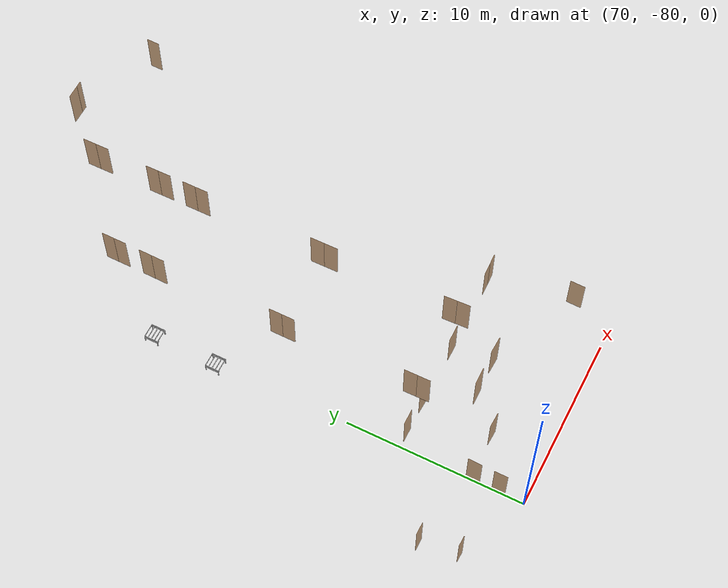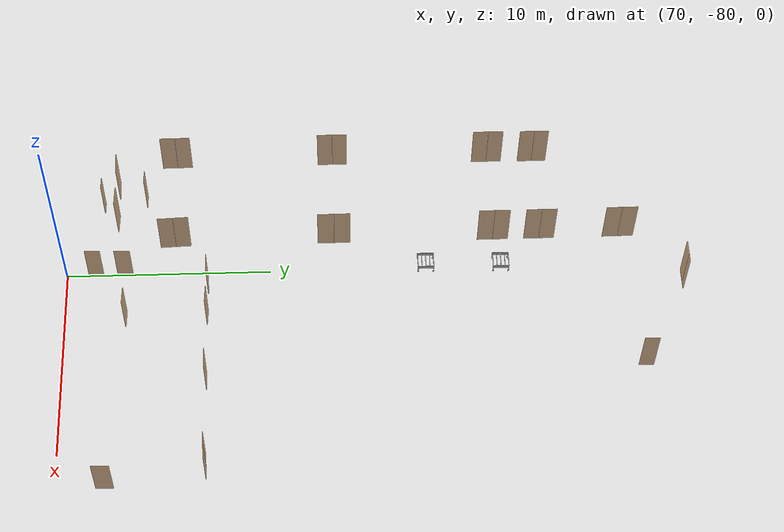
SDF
<sdf version="1.7">
 <world name="estce">
  <include>
   <name>OpenRobotics/MiRCart</name>
   <uri>model://MiRCart</uri>
   <pose>69.80679362706269 -62.352217355699814 0.0 0 0 1.5708</pose>
   <static>True</static>
  </include>
  <include>
   <name>OpenRobotics/MiRCart_2</name>
   <uri>model://MiRCart</uri>
   <pose>69.86865174262017 -58.657115191611055 0.0 0 0 1.5708</pose>
   <static>True</static>
  </include>
  <model name="cancan3">
   <pose>65.9874141096206 -78.28000876506593 0.0 0 0 3.1268591754535766</pose>
   <link name="right">
    <pose>0 0 1.11 0 0 0</pose>
    <visual name="right_visual">
     <geometry><box><size>0.5658636979061031 0.03 2.2</size></box></geometry>
     <material><ambient>0.5 0.25 0 0.6</ambient><diffuse>0.5 0.25 0 0.6</diffuse></material>
    </visual>
    <collision name="right_collision">
     <geometry><box><size>0.5658636979061031 0.03 2.2</size></box></geometry>
     <surface><contact><collide_bitmask>0x02</collide_bitmask></contact></surface>
    </collision>
    <inertial>
     <mass>50.0</mass>
     <inertia><ixx>20.17041666666667</ixx><iyy>21.500840519199876</iyy><izz>1.3379238525332064</izz></inertia>
    </inertial>
   </link>
   <joint name="right_joint" type="revolute">
    <parent>world</parent>
    <child>right</child>
    <axis><xyz>0 0 -1</xyz><limit><lower>0</lower><upper>1.57</upper></limit></axis>
    <pose>0.2879318489530516 0 0 0 0 0</pose>
   </joint>
   <plugin name="door" filename="libdoor.so">
    <v_max_door>0.5</v_max_door>
    <a_max_door>0.3</a_max_door>
    <a_nom_door>0.15</a_nom_door>
    <dx_min_door>0.01</dx_min_door>
    <f_max_door>500.0</f_max_door>
    <door name="cancan3" type="SwingDoor" left_joint_name="empty_joint" right_joint_name="right_joint"/>
   </plugin>
  </model>
  <model name="cancan2">
   <pose>65.64942774056314 -76.17066049148946 0.0 0 0 0.0</pose>
   <link name="right">
    <pose>0 0 1.11 0 0 0</pose>
    <visual name="right_visual">
     <geometry><box><size>0.6658829585567838 0.03 2.2</size></box></geometry>
     <material><ambient>0.5 0.25 0 0.6</ambient><diffuse>0.5 0.25 0 0.6</diffuse></material>
    </visual>
    <collision name="right_collision">
     <geometry><box><size>0.6658829585567838 0.03 2.2</size></box></geometry>
     <surface><contact><collide_bitmask>0x02</collide_bitmask></contact></surface>
    </collision>
    <inertial>
     <mass>50.0</mass>
     <inertia><ixx>20.17041666666667</ixx><iyy>22.014167143734735</iyy><izz>1.8512504770680647</izz></inertia>
    </inertial>
   </link>
   <joint name="right_joint" type="revolute">
    <parent>world</parent>
    <child>right</child>
    <axis><xyz>0 0 1</xyz><limit><lower>0</lower><upper>1.57</upper></limit></axis>
    <pose>0.3379414792783919 0 0 0 0 0</pose>
   </joint>
   <plugin name="door" filename="libdoor.so">
    <v_max_door>0.5</v_max_door>
    <a_max_door>0.3</a_max_door>
    <a_nom_door>0.15</a_nom_door>
    <dx_min_door>0.01</dx_min_door>
    <f_max_door>500.0</f_max_door>
    <door name="cancan2" type="SwingDoor" left_joint_name="empty_joint" right_joint_name="right_joint"/>
   </plugin>
  </model>
  <model name="can7">
   <pose>70.06035354413558 -77.11813783586021 0.0 0 0 1.549233235089427</pose>
   <link name="right">
    <pose>0 0 1.11 0 0 0</pose>
    <visual name="right_visual">
     <geometry><box><size>0.7728128371704641 0.03 2.2</size></box></geometry>
     <material><ambient>0.5 0.25 0 0.6</ambient><diffuse>0.5 0.25 0 0.6</diffuse></material>
    </visual>
    <collision name="right_collision">
     <geometry><box><size>0.7728128371704641 0.03 2.2</size></box></geometry>
     <surface><contact><collide_bitmask>0x02</collide_bitmask></contact></surface>
    </collision>
    <inertial>
     <mass>50.0</mass>
     <inertia><ixx>20.17041666666667</ixx><iyy>22.655165338731095</iyy><izz>2.4922486720644264</izz></inertia>
    </inertial>
   </link>
   <joint name="right_joint" type="revolute">
    <parent>world</parent>
    <child>right</child>
    <axis><xyz>0 0 -1</xyz><limit><lower>0</lower><upper>1.57</upper></limit></axis>
    <pose>0.39140641858523206 0 0 0 0 0</pose>
   </joint>
   <plugin name="door" filename="libdoor.so">
    <v_max_door>0.5</v_max_door>
    <a_max_door>0.3</a_max_door>
    <a_nom_door>0.15</a_nom_door>
    <dx_min_door>0.01</dx_min_door>
    <f_max_door>500.0</f_max_door>
    <door name="can7" type="SwingDoor" left_joint_name="empty_joint" right_joint_name="right_joint"/>
   </plugin>
  </model>
  <model name="can8">
   <pose>70.04037759244974 -78.55145725909793 0.0 0 0 1.5402560482815513</pose>
   <link name="right">
    <pose>0 0 1.11 0 0 0</pose>
    <visual name="right_visual">
     <geometry><box><size>0.7456228934420266 0.03 2.2</size></box></geometry>
     <material><ambient>0.5 0.25 0 0.6</ambient><diffuse>0.5 0.25 0 0.6</diffuse></material>
    </visual>
    <collision name="right_collision">
     <geometry><box><size>0.7456228934420266 0.03 2.2</size></box></geometry>
     <surface><contact><collide_bitmask>0x02</collide_bitmask></contact></surface>
    </collision>
    <inertial>
     <mass>50.0</mass>
     <inertia><ixx>20.17041666666667</ixx><iyy>22.483139580103586</iyy><izz>2.3202229134369157</izz></inertia>
    </inertial>
   </link>
   <joint name="right_joint" type="revolute">
    <parent>world</parent>
    <child>right</child>
    <axis><xyz>0 0 -1</xyz><limit><lower>0</lower><upper>1.57</upper></limit></axis>
    <pose>0.3778114467210133 0 0 0 0 0</pose>
   </joint>
   <plugin name="door" filename="libdoor.so">
    <v_max_door>0.5</v_max_door>
    <a_max_door>0.3</a_max_door>
    <a_nom_door>0.15</a_nom_door>
    <dx_min_door>0.01</dx_min_door>
    <f_max_door>500.0</f_max_door>
    <door name="can8" type="SwingDoor" left_joint_name="empty_joint" right_joint_name="right_joint"/>
   </plugin>
  </model>
  <model name="can6">
   <pose>72.58942125200996 -77.0033771156696 0.0 0 0 3.103509085440403</pose>
   <link name="right">
    <pose>0 0 1.11 0 0 0</pose>
    <visual name="right_visual">
     <geometry><box><size>0.845366502185707 0.03 2.2</size></box></geometry>
     <material><ambient>0.5 0.25 0 0.6</ambient><diffuse>0.5 0.25 0 0.6</diffuse></material>
    </visual>
    <collision name="right_collision">
     <geometry><box><size>0.845366502185707 0.03 2.2</size></box></geometry>
     <surface><contact><collide_bitmask>0x02</collide_bitmask></contact></surface>
    </collision>
    <inertial>
     <mass>50.0</mass>
     <inertia><ixx>20.17041666666667</ixx><iyy>23.144352179240407</iyy><izz>2.981435512573737</izz></inertia>
    </inertial>
   </link>
   <joint name="right_joint" type="revolute">
    <parent>world</parent>
    <child>right</child>
    <axis><xyz>0 0 1</xyz><limit><lower>0</lower><upper>1.57</upper></limit></axis>
    <pose>0.4276832510928535 0 0 0 0 0</pose>
   </joint>
   <plugin name="door" filename="libdoor.so">
    <v_max_door>0.5</v_max_door>
    <a_max_door>0.3</a_max_door>
    <a_nom_door>0.15</a_nom_door>
    <dx_min_door>0.01</dx_min_door>
    <f_max_door>500.0</f_max_door>
    <door name="can6" type="SwingDoor" left_joint_name="empty_joint" right_joint_name="right_joint"/>
   </plugin>
  </model>
  <model name="can2">
   <pose>72.59327055056514 -73.06088737912995 0.0 0 0 3.0966947153122124</pose>
   <link name="right">
    <pose>0 0 1.11 0 0 0</pose>
    <visual name="right_visual">
     <geometry><box><size>0.8106265710402226 0.03 2.2</size></box></geometry>
     <material><ambient>0.5 0.25 0 0.6</ambient><diffuse>0.5 0.25 0 0.6</diffuse></material>
    </visual>
    <collision name="right_collision">
     <geometry><box><size>0.8106265710402226 0.03 2.2</size></box></geometry>
     <surface><contact><collide_bitmask>0x02</collide_bitmask></contact></surface>
    </collision>
    <inertial>
     <mass>50.0</mass>
     <inertia><ixx>20.17041666666667</ixx><iyy>22.904647656985127</iyy><izz>2.741730990318455</izz></inertia>
    </inertial>
   </link>
   <joint name="right_joint" type="revolute">
    <parent>world</parent>
    <child>right</child>
    <axis><xyz>0 0 -1</xyz><limit><lower>0</lower><upper>1.57</upper></limit></axis>
    <pose>0.4103132855201113 0 0 0 0 0</pose>
   </joint>
   <plugin name="door" filename="libdoor.so">
    <v_max_door>0.5</v_max_door>
    <a_max_door>0.3</a_max_door>
    <a_nom_door>0.15</a_nom_door>
    <dx_min_door>0.01</dx_min_door>
    <f_max_door>500.0</f_max_door>
    <door name="can2" type="SwingDoor" left_joint_name="empty_joint" right_joint_name="right_joint"/>
   </plugin>
  </model>
  <model name="can1">
   <pose>70.7878485261773 -73.05168497442074 0.0 0 0 0.021507412331041125</pose>
   <link name="right">
    <pose>0 0 1.11 0 0 0</pose>
    <visual name="right_visual">
     <geometry><box><size>0.8468522677860504 0.03 2.2</size></box></geometry>
     <material><ambient>0.5 0.25 0 0.6</ambient><diffuse>0.5 0.25 0 0.6</diffuse></material>
    </visual>
    <collision name="right_collision">
     <geometry><box><size>0.8468522677860504 0.03 2.2</size></box></geometry>
     <surface><contact><collide_bitmask>0x02</collide_bitmask></contact></surface>
    </collision>
    <inertial>
     <mass>50.0</mass>
     <inertia><ixx>20.17041666666667</ixx><iyy>23.15482818105991</iyy><izz>2.991911514393235</izz></inertia>
    </inertial>
   </link>
   <joint name="right_joint" type="revolute">
    <parent>world</parent>
    <child>right</child>
    <axis><xyz>0 0 1</xyz><limit><lower>0</lower><upper>1.57</upper></limit></axis>
    <pose>0.4284261338930252 0 0 0 0 0</pose>
   </joint>
   <plugin name="door" filename="libdoor.so">
    <v_max_door>0.5</v_max_door>
    <a_max_door>0.3</a_max_door>
    <a_nom_door>0.15</a_nom_door>
    <dx_min_door>0.01</dx_min_door>
    <f_max_door>500.0</f_max_door>
    <door name="can1" type="SwingDoor" left_joint_name="empty_joint" right_joint_name="right_joint"/>
   </plugin>
  </model>
  <model name="can3">
   <pose>76.12580437975446 -73.07010100628392 0.0 0 0 0.018498442462925417</pose>
   <link name="right">
    <pose>0 0 1.11 0 0 0</pose>
    <visual name="right_visual">
     <geometry><box><size>0.9849950738526125 0.03 2.2</size></box></geometry>
     <material><ambient>0.5 0.25 0 0.6</ambient><diffuse>0.5 0.25 0 0.6</diffuse></material>
    </visual>
    <collision name="right_collision">
     <geometry><box><size>0.9849950738526125 0.03 2.2</size></box></geometry>
     <surface><contact><collide_bitmask>0x02</collide_bitmask></contact></surface>
    </collision>
    <inertial>
     <mass>50.0</mass>
     <inertia><ixx>20.17041666666667</ixx><iyy>24.209230397974643</iyy><izz>4.046313731307974</izz></inertia>
    </inertial>
   </link>
   <joint name="right_joint" type="revolute">
    <parent>world</parent>
    <child>right</child>
    <axis><xyz>0 0 -1</xyz><limit><lower>0</lower><upper>1.57</upper></limit></axis>
    <pose>0.49749753692630627 0 0 0 0 0</pose>
   </joint>
   <plugin name="door" filename="libdoor.so">
    <v_max_door>0.5</v_max_door>
    <a_max_door>0.3</a_max_door>
    <a_nom_door>0.15</a_nom_door>
    <dx_min_door>0.01</dx_min_door>
    <f_max_door>500.0</f_max_door>
    <door name="can3" type="SwingDoor" left_joint_name="empty_joint" right_joint_name="right_joint"/>
   </plugin>
  </model>
  <model name="can4">
   <pose>80.71146364835411 -73.03691623710695 0.0 0 0 0.03623150862274341</pose>
   <link name="right">
    <pose>0.33103247992899754 0 1.11 0 0 0</pose>
    <visual name="right_visual">
     <geometry><box><size>0.6520649598579951 0.03 2.2</size></box></geometry>
     <material><ambient>0.5 0.25 0 0.6</ambient><diffuse>0.5 0.25 0 0.6</diffuse></material>
    </visual>
    <collision name="right_collision">
     <geometry><box><size>0.6520649598579951 0.03 2.2</size></box></geometry>
     <surface><contact><collide_bitmask>0x02</collide_bitmask></contact></surface>
    </collision>
    <inertial>
     <mass>50.0</mass>
     <inertia><ixx>20.17041666666667</ixx><iyy>21.93828629947754</iyy><izz>1.77536963281087</izz></inertia>
    </inertial>
   </link>
   <joint name="right_joint" type="revolute">
    <parent>world</parent>
    <child>right</child>
    <axis><xyz>0 0 1</xyz><limit><lower>0</lower><upper>1.57</upper></limit></axis>
    <pose>0.33103247992899754 0 0 0 0 0</pose>
   </joint>
   <link name="left">
    <pose>-0.33103247992899754 0 1.11 0 0 0</pose>
    <visual name="left_visual">
     <geometry><box><size>0.6520649598579951 0.03 2.2</size></box></geometry>
     <material><ambient>0.5 0.25 0 0.6</ambient><diffuse>0.5 0.25 0 0.6</diffuse></material>
    </visual>
    <collision name="left_collision">
     <geometry><box><size>0.6520649598579951 0.03 2.2</size></box></geometry>
     <surface><contact><collide_bitmask>0x02</collide_bitmask></contact></surface>
    </collision>
    <inertial>
     <mass>50.0</mass>
     <inertia><ixx>20.17041666666667</ixx><iyy>21.93828629947754</iyy><izz>1.77536963281087</izz></inertia>
    </inertial>
   </link>
   <joint name="left_joint" type="revolute">
    <parent>world</parent>
    <child>left</child>
    <axis><xyz>0 0 1</xyz><limit><lower>-1.57</lower><upper>0</upper></limit></axis>
    <pose>-0.33103247992899754 0 0 0 0 0</pose>
   </joint>
   <plugin name="door" filename="libdoor.so">
    <v_max_door>0.5</v_max_door>
    <a_max_door>0.3</a_max_door>
    <a_nom_door>0.15</a_nom_door>
    <dx_min_door>0.01</dx_min_door>
    <f_max_door>500.0</f_max_door>
    <door name="can4" type="DoubleSwingDoor" left_joint_name="left_joint" right_joint_name="right_joint"/>
   </plugin>
  </model>
  <model name="can5">
   <pose>81.7004977056983 -77.67335706827876 0.0 0 0 1.5466963287256115</pose>
   <link name="right">
    <pose>0 0 1.11 0 0 0</pose>
    <visual name="right_visual">
     <geometry><box><size>0.8394490678208565 0.03 2.2</size></box></geometry>
     <material><ambient>0.5 0.25 0 0.6</ambient><diffuse>0.5 0.25 0 0.6</diffuse></material>
    </visual>
    <collision name="right_collision">
     <geometry><box><size>0.8394490678208565 0.03 2.2</size></box></geometry>
     <surface><contact><collide_bitmask>0x02</collide_bitmask></contact></surface>
    </collision>
    <inertial>
     <mass>50.0</mass>
     <inertia><ixx>20.17041666666667</ixx><iyy>23.10281140610544</iyy><izz>2.939894739438771</izz></inertia>
    </inertial>
   </link>
   <joint name="right_joint" type="revolute">
    <parent>world</parent>
    <child>right</child>
    <axis><xyz>0 0 1</xyz><limit><lower>0</lower><upper>1.57</upper></limit></axis>
    <pose>0.42472453391042825 0 0 0 0 0</pose>
   </joint>
   <plugin name="door" filename="libdoor.so">
    <v_max_door>0.5</v_max_door>
    <a_max_door>0.3</a_max_door>
    <a_nom_door>0.15</a_nom_door>
    <dx_min_door>0.01</dx_min_door>
    <f_max_door>500.0</f_max_door>
    <door name="can5" type="SwingDoor" left_joint_name="empty_joint" right_joint_name="right_joint"/>
   </plugin>
  </model>
  <model name="TD0120AI">
   <pose>69.458115087851 -57.717003443619944 8.0 0 0 -1.5734051330332963</pose>
   <link name="right">
    <pose>0.3240667100073321 0 1.11 0 0 0</pose>
    <visual name="right_visual">
     <geometry><box><size>0.6381334200146642 0.03 2.2</size></box></geometry>
     <material><ambient>0.5 0.25 0 0.6</ambient><diffuse>0.5 0.25 0 0.6</diffuse></material>
    </visual>
    <collision name="right_collision">
     <geometry><box><size>0.6381334200146642 0.03 2.2</size></box></geometry>
     <surface><contact><collide_bitmask>0x02</collide_bitmask></contact></surface>
    </collision>
    <inertial>
     <mass>50.0</mass>
     <inertia><ixx>20.17041666666667</ixx><iyy>21.863392757248388</iyy><izz>1.7004760905817162</izz></inertia>
    </inertial>
   </link>
   <joint name="right_joint" type="revolute">
    <parent>world</parent>
    <child>right</child>
    <axis><xyz>0 0 -1</xyz><limit><lower>0</lower><upper>1.57</upper></limit></axis>
    <pose>0.3240667100073321 0 0 0 0 0</pose>
   </joint>
   <link name="left">
    <pose>-0.3240667100073321 0 1.11 0 0 0</pose>
    <visual name="left_visual">
     <geometry><box><size>0.6381334200146642 0.03 2.2</size></box></geometry>
     <material><ambient>0.5 0.25 0 0.6</ambient><diffuse>0.5 0.25 0 0.6</diffuse></material>
    </visual>
    <collision name="left_collision">
     <geometry><box><size>0.6381334200146642 0.03 2.2</size></box></geometry>
     <surface><contact><collide_bitmask>0x02</collide_bitmask></contact></surface>
    </collision>
    <inertial>
     <mass>50.0</mass>
     <inertia><ixx>20.17041666666667</ixx><iyy>21.863392757248388</iyy><izz>1.7004760905817162</izz></inertia>
    </inertial>
   </link>
   <joint name="left_joint" type="revolute">
    <parent>world</parent>
    <child>left</child>
    <axis><xyz>0 0 -1</xyz><limit><lower>-1.57</lower><upper>0</upper></limit></axis>
    <pose>-0.3240667100073321 0 0 0 0 0</pose>
   </joint>
   <plugin name="door" filename="libdoor.so">
    <v_max_door>0.5</v_max_door>
    <a_max_door>0.3</a_max_door>
    <a_nom_door>0.15</a_nom_door>
    <dx_min_door>0.01</dx_min_door>
    <f_max_door>500.0</f_max_door>
    <door name="TD0120AI" type="DoubleSwingDoor" left_joint_name="left_joint" right_joint_name="right_joint"/>
   </plugin>
  </model>
  <model name="TD0108AI">
   <pose>69.4391617826742 -59.79881454888431 8.0 0 0 -1.585838878532824</pose>
   <link name="right">
    <pose>0.338806890408198 0 1.11 0 0 0</pose>
    <visual name="right_visual">
     <geometry><box><size>0.667613780816396 0.03 2.2</size></box></geometry>
     <material><ambient>0.5 0.25 0 0.6</ambient><diffuse>0.5 0.25 0 0.6</diffuse></material>
    </visual>
    <collision name="right_collision">
     <geometry><box><size>0.667613780816396 0.03 2.2</size></box></geometry>
     <surface><contact><collide_bitmask>0x02</collide_bitmask></contact></surface>
    </collision>
    <inertial>
     <mass>50.0</mass>
     <inertia><ixx>20.17041666666667</ixx><iyy>22.02378400139985</iyy><izz>1.8608673347331786</izz></inertia>
    </inertial>
   </link>
   <joint name="right_joint" type="revolute">
    <parent>world</parent>
    <child>right</child>
    <axis><xyz>0 0 -1</xyz><limit><lower>0</lower><upper>1.57</upper></limit></axis>
    <pose>0.338806890408198 0 0 0 0 0</pose>
   </joint>
   <link name="left">
    <pose>-0.338806890408198 0 1.11 0 0 0</pose>
    <visual name="left_visual">
     <geometry><box><size>0.667613780816396 0.03 2.2</size></box></geometry>
     <material><ambient>0.5 0.25 0 0.6</ambient><diffuse>0.5 0.25 0 0.6</diffuse></material>
    </visual>
    <collision name="left_collision">
     <geometry><box><size>0.667613780816396 0.03 2.2</size></box></geometry>
     <surface><contact><collide_bitmask>0x02</collide_bitmask></contact></surface>
    </collision>
    <inertial>
     <mass>50.0</mass>
     <inertia><ixx>20.17041666666667</ixx><iyy>22.02378400139985</iyy><izz>1.8608673347331786</izz></inertia>
    </inertial>
   </link>
   <joint name="left_joint" type="revolute">
    <parent>world</parent>
    <child>left</child>
    <axis><xyz>0 0 -1</xyz><limit><lower>-1.57</lower><upper>0</upper></limit></axis>
    <pose>-0.338806890408198 0 0 0 0 0</pose>
   </joint>
   <plugin name="door" filename="libdoor.so">
    <v_max_door>0.5</v_max_door>
    <a_max_door>0.3</a_max_door>
    <a_nom_door>0.15</a_nom_door>
    <dx_min_door>0.01</dx_min_door>
    <f_max_door>500.0</f_max_door>
    <door name="TD0108AI" type="DoubleSwingDoor" left_joint_name="left_joint" right_joint_name="right_joint"/>
   </plugin>
  </model>
  <model name="TD0107AI">
   <pose>69.42261503695126 -66.85896645383062 8.0 0 0 -1.571123505096818</pose>
   <link name="right">
    <pose>0.33253889292192323 0 1.11 0 0 0</pose>
    <visual name="right_visual">
     <geometry><box><size>0.6550777858438465 0.03 2.2</size></box></geometry>
     <material><ambient>0.5 0.25 0 0.6</ambient><diffuse>0.5 0.25 0 0.6</diffuse></material>
    </visual>
    <collision name="right_collision">
     <geometry><box><size>0.6550777858438465 0.03 2.2</size></box></geometry>
     <surface><contact><collide_bitmask>0x02</collide_bitmask></contact></surface>
    </collision>
    <inertial>
     <mass>50.0</mass>
     <inertia><ixx>20.17041666666667</ixx><iyy>21.954695439608656</iyy><izz>1.791778772941985</izz></inertia>
    </inertial>
   </link>
   <joint name="right_joint" type="revolute">
    <parent>world</parent>
    <child>right</child>
    <axis><xyz>0 0 -1</xyz><limit><lower>0</lower><upper>1.57</upper></limit></axis>
    <pose>0.33253889292192323 0 0 0 0 0</pose>
   </joint>
   <link name="left">
    <pose>-0.33253889292192323 0 1.11 0 0 0</pose>
    <visual name="left_visual">
     <geometry><box><size>0.6550777858438465 0.03 2.2</size></box></geometry>
     <material><ambient>0.5 0.25 0 0.6</ambient><diffuse>0.5 0.25 0 0.6</diffuse></material>
    </visual>
    <collision name="left_collision">
     <geometry><box><size>0.6550777858438465 0.03 2.2</size></box></geometry>
     <surface><contact><collide_bitmask>0x02</collide_bitmask></contact></surface>
    </collision>
    <inertial>
     <mass>50.0</mass>
     <inertia><ixx>20.17041666666667</ixx><iyy>21.954695439608656</iyy><izz>1.791778772941985</izz></inertia>
    </inertial>
   </link>
   <joint name="left_joint" type="revolute">
    <parent>world</parent>
    <child>left</child>
    <axis><xyz>0 0 -1</xyz><limit><lower>-1.57</lower><upper>0</upper></limit></axis>
    <pose>-0.33253889292192323 0 0 0 0 0</pose>
   </joint>
   <plugin name="door" filename="libdoor.so">
    <v_max_door>0.5</v_max_door>
    <a_max_door>0.3</a_max_door>
    <a_nom_door>0.15</a_nom_door>
    <dx_min_door>0.01</dx_min_door>
    <f_max_door>500.0</f_max_door>
    <door name="TD0107AI" type="DoubleSwingDoor" left_joint_name="left_joint" right_joint_name="right_joint"/>
   </plugin>
  </model>
  <model name="TD0104AI">
   <pose>73.76116416509116 -66.85944655126693 8.0 0 0 1.5805418816825874</pose>
   <link name="right">
    <pose>0.3619261226570596 0 1.11 0 0 0</pose>
    <visual name="right_visual">
     <geometry><box><size>0.7138522453141192 0.03 2.2</size></box></geometry>
     <material><ambient>0.5 0.25 0 0.6</ambient><diffuse>0.5 0.25 0 0.6</diffuse></material>
    </visual>
    <collision name="right_collision">
     <geometry><box><size>0.7138522453141192 0.03 2.2</size></box></geometry>
     <surface><contact><collide_bitmask>0x02</collide_bitmask></contact></surface>
    </collision>
    <inertial>
     <mass>50.0</mass>
     <inertia><ixx>20.17041666666667</ixx><iyy>22.289937617250047</iyy><izz>2.127020950583373</izz></inertia>
    </inertial>
   </link>
   <joint name="right_joint" type="revolute">
    <parent>world</parent>
    <child>right</child>
    <axis><xyz>0 0 -1</xyz><limit><lower>0</lower><upper>1.57</upper></limit></axis>
    <pose>0.3619261226570596 0 0 0 0 0</pose>
   </joint>
   <link name="left">
    <pose>-0.3619261226570596 0 1.11 0 0 0</pose>
    <visual name="left_visual">
     <geometry><box><size>0.7138522453141192 0.03 2.2</size></box></geometry>
     <material><ambient>0.5 0.25 0 0.6</ambient><diffuse>0.5 0.25 0 0.6</diffuse></material>
    </visual>
    <collision name="left_collision">
     <geometry><box><size>0.7138522453141192 0.03 2.2</size></box></geometry>
     <surface><contact><collide_bitmask>0x02</collide_bitmask></contact></surface>
    </collision>
    <inertial>
     <mass>50.0</mass>
     <inertia><ixx>20.17041666666667</ixx><iyy>22.289937617250047</iyy><izz>2.127020950583373</izz></inertia>
    </inertial>
   </link>
   <joint name="left_joint" type="revolute">
    <parent>world</parent>
    <child>left</child>
    <axis><xyz>0 0 -1</xyz><limit><lower>-1.57</lower><upper>0</upper></limit></axis>
    <pose>-0.3619261226570596 0 0 0 0 0</pose>
   </joint>
   <plugin name="door" filename="libdoor.so">
    <v_max_door>0.5</v_max_door>
    <a_max_door>0.3</a_max_door>
    <a_nom_door>0.15</a_nom_door>
    <dx_min_door>0.01</dx_min_door>
    <f_max_door>500.0</f_max_door>
    <door name="TD0104AI" type="DoubleSwingDoor" left_joint_name="left_joint" right_joint_name="right_joint"/>
   </plugin>
  </model>
  <model name="TD0106AI">
   <pose>69.42705745066247 -73.93064066868044 8.0 0 0 -1.5619125662999749</pose>
   <link name="right">
    <pose>0.3371586841216713 0 1.11 0 0 0</pose>
    <visual name="right_visual">
     <geometry><box><size>0.6643173682433426 0.03 2.2</size></box></geometry>
     <material><ambient>0.5 0.25 0 0.6</ambient><diffuse>0.5 0.25 0 0.6</diffuse></material>
    </visual>
    <collision name="right_collision">
     <geometry><box><size>0.6643173682433426 0.03 2.2</size></box></geometry>
     <surface><contact><collide_bitmask>0x02</collide_bitmask></contact></surface>
    </collision>
    <inertial>
     <mass>50.0</mass>
     <inertia><ixx>20.17041666666667</ixx><iyy>22.005489857290673</iyy><izz>1.842573190624004</izz></inertia>
    </inertial>
   </link>
   <joint name="right_joint" type="revolute">
    <parent>world</parent>
    <child>right</child>
    <axis><xyz>0 0 -1</xyz><limit><lower>0</lower><upper>1.57</upper></limit></axis>
    <pose>0.3371586841216713 0 0 0 0 0</pose>
   </joint>
   <link name="left">
    <pose>-0.3371586841216713 0 1.11 0 0 0</pose>
    <visual name="left_visual">
     <geometry><box><size>0.6643173682433426 0.03 2.2</size></box></geometry>
     <material><ambient>0.5 0.25 0 0.6</ambient><diffuse>0.5 0.25 0 0.6</diffuse></material>
    </visual>
    <collision name="left_collision">
     <geometry><box><size>0.6643173682433426 0.03 2.2</size></box></geometry>
     <surface><contact><collide_bitmask>0x02</collide_bitmask></contact></surface>
    </collision>
    <inertial>
     <mass>50.0</mass>
     <inertia><ixx>20.17041666666667</ixx><iyy>22.005489857290673</iyy><izz>1.842573190624004</izz></inertia>
    </inertial>
   </link>
   <joint name="left_joint" type="revolute">
    <parent>world</parent>
    <child>left</child>
    <axis><xyz>0 0 -1</xyz><limit><lower>-1.57</lower><upper>0</upper></limit></axis>
    <pose>-0.3371586841216713 0 0 0 0 0</pose>
   </joint>
   <plugin name="door" filename="libdoor.so">
    <v_max_door>0.5</v_max_door>
    <a_max_door>0.3</a_max_door>
    <a_nom_door>0.15</a_nom_door>
    <dx_min_door>0.01</dx_min_door>
    <f_max_door>500.0</f_max_door>
    <door name="TD0106AI" type="DoubleSwingDoor" left_joint_name="left_joint" right_joint_name="right_joint"/>
   </plugin>
  </model>
  <model name="TD0105AI">
   <pose>73.78379682080418 -73.91818855977962 8.0 0 0 1.6134941406274728</pose>
   <link name="right">
    <pose>0.3394167036928094 0 1.11 0 0 0</pose>
    <visual name="right_visual">
     <geometry><box><size>0.6688334073856188 0.03 2.2</size></box></geometry>
     <material><ambient>0.5 0.25 0 0.6</ambient><diffuse>0.5 0.25 0 0.6</diffuse></material>
    </visual>
    <collision name="right_collision">
     <geometry><box><size>0.6688334073856188 0.03 2.2</size></box></geometry>
     <surface><contact><collide_bitmask>0x02</collide_bitmask></contact></surface>
    </collision>
    <inertial>
     <mass>50.0</mass>
     <inertia><ixx>20.17041666666667</ixx><iyy>22.03057552847941</iyy><izz>1.8676588618127383</izz></inertia>
    </inertial>
   </link>
   <joint name="right_joint" type="revolute">
    <parent>world</parent>
    <child>right</child>
    <axis><xyz>0 0 -1</xyz><limit><lower>0</lower><upper>1.57</upper></limit></axis>
    <pose>0.3394167036928094 0 0 0 0 0</pose>
   </joint>
   <link name="left">
    <pose>-0.3394167036928094 0 1.11 0 0 0</pose>
    <visual name="left_visual">
     <geometry><box><size>0.6688334073856188 0.03 2.2</size></box></geometry>
     <material><ambient>0.5 0.25 0 0.6</ambient><diffuse>0.5 0.25 0 0.6</diffuse></material>
    </visual>
    <collision name="left_collision">
     <geometry><box><size>0.6688334073856188 0.03 2.2</size></box></geometry>
     <surface><contact><collide_bitmask>0x02</collide_bitmask></contact></surface>
    </collision>
    <inertial>
     <mass>50.0</mass>
     <inertia><ixx>20.17041666666667</ixx><iyy>22.03057552847941</iyy><izz>1.8676588618127383</izz></inertia>
    </inertial>
   </link>
   <joint name="left_joint" type="revolute">
    <parent>world</parent>
    <child>left</child>
    <axis><xyz>0 0 -1</xyz><limit><lower>-1.57</lower><upper>0</upper></limit></axis>
    <pose>-0.3394167036928094 0 0 0 0 0</pose>
   </joint>
   <plugin name="door" filename="libdoor.so">
    <v_max_door>0.5</v_max_door>
    <a_max_door>0.3</a_max_door>
    <a_nom_door>0.15</a_nom_door>
    <dx_min_door>0.01</dx_min_door>
    <f_max_door>500.0</f_max_door>
    <door name="TD0105AI" type="DoubleSwingDoor" left_joint_name="left_joint" right_joint_name="right_joint"/>
   </plugin>
  </model>
  <model name="TD0118CP3">
   <pose>70.69289519193421 -76.50925675459348 8.0 0 0 -3.1202965498709876</pose>
   <link name="right">
    <pose>0 0 1.11 0 0 0</pose>
    <visual name="right_visual">
     <geometry><box><size>0.8786817897678904 0.03 2.2</size></box></geometry>
     <material><ambient>0.5 0.25 0 0.6</ambient><diffuse>0.5 0.25 0 0.6</diffuse></material>
    </visual>
    <collision name="right_collision">
     <geometry><box><size>0.8786817897678904 0.03 2.2</size></box></geometry>
     <surface><contact><collide_bitmask>0x02</collide_bitmask></contact></surface>
    </collision>
    <inertial>
     <mass>50.0</mass>
     <inertia><ixx>20.17041666666667</ixx><iyy>23.38367369862377</iyy><izz>3.2207570319570964</izz></inertia>
    </inertial>
   </link>
   <joint name="right_joint" type="revolute">
    <parent>world</parent>
    <child>right</child>
    <axis><xyz>0 0 -1</xyz><limit><lower>0</lower><upper>1.57</upper></limit></axis>
    <pose>0.4443408948839452 0 0 0 0 0</pose>
   </joint>
   <plugin name="door" filename="libdoor.so">
    <v_max_door>0.5</v_max_door>
    <a_max_door>0.3</a_max_door>
    <a_nom_door>0.15</a_nom_door>
    <dx_min_door>0.01</dx_min_door>
    <f_max_door>500.0</f_max_door>
    <door name="TD0118CP3" type="SwingDoor" left_joint_name="empty_joint" right_joint_name="right_joint"/>
   </plugin>
  </model>
  <model name="TD0118CP4">
   <pose>72.5011613042312 -76.49643048348364 8.0 0 0 -0.035525531201685036</pose>
   <link name="right">
    <pose>0 0 1.11 0 0 0</pose>
    <visual name="right_visual">
     <geometry><box><size>0.8665398344788962 0.03 2.2</size></box></geometry>
     <material><ambient>0.5 0.25 0 0.6</ambient><diffuse>0.5 0.25 0 0.6</diffuse></material>
    </visual>
    <collision name="right_collision">
     <geometry><box><size>0.8665398344788962 0.03 2.2</size></box></geometry>
     <surface><contact><collide_bitmask>0x02</collide_bitmask></contact></surface>
    </collision>
    <inertial>
     <mass>50.0</mass>
     <inertia><ixx>20.17041666666667</ixx><iyy>23.295380353077974</iyy><izz>3.1324636864113033</izz></inertia>
    </inertial>
   </link>
   <joint name="right_joint" type="revolute">
    <parent>world</parent>
    <child>right</child>
    <axis><xyz>0 0 1</xyz><limit><lower>0</lower><upper>1.57</upper></limit></axis>
    <pose>0.4382699172394481 0 0 0 0 0</pose>
   </joint>
   <plugin name="door" filename="libdoor.so">
    <v_max_door>0.5</v_max_door>
    <a_max_door>0.3</a_max_door>
    <a_nom_door>0.15</a_nom_door>
    <dx_min_door>0.01</dx_min_door>
    <f_max_door>500.0</f_max_door>
    <door name="TD0118CP4" type="SwingDoor" left_joint_name="empty_joint" right_joint_name="right_joint"/>
   </plugin>
  </model>
  <model name="TD0103AI">
   <pose>73.76084966579683 -59.77567315356594 8.0 0 0 1.5729614221660908</pose>
   <link name="right">
    <pose>0.34471092342329807 0 1.11 0 0 0</pose>
    <visual name="right_visual">
     <geometry><box><size>0.6794218468465961 0.03 2.2</size></box></geometry>
     <material><ambient>0.5 0.25 0 0.6</ambient><diffuse>0.5 0.25 0 0.6</diffuse></material>
    </visual>
    <collision name="right_collision">
     <geometry><box><size>0.6794218468465961 0.03 2.2</size></box></geometry>
     <surface><contact><collide_bitmask>0x02</collide_bitmask></contact></surface>
    </collision>
    <inertial>
     <mass>50.0</mass>
     <inertia><ixx>20.17041666666667</ixx><iyy>22.09005852488517</iyy><izz>1.927141858218498</izz></inertia>
    </inertial>
   </link>
   <joint name="right_joint" type="revolute">
    <parent>world</parent>
    <child>right</child>
    <axis><xyz>0 0 -1</xyz><limit><lower>0</lower><upper>1.57</upper></limit></axis>
    <pose>0.34471092342329807 0 0 0 0 0</pose>
   </joint>
   <link name="left">
    <pose>-0.34471092342329807 0 1.11 0 0 0</pose>
    <visual name="left_visual">
     <geometry><box><size>0.6794218468465961 0.03 2.2</size></box></geometry>
     <material><ambient>0.5 0.25 0 0.6</ambient><diffuse>0.5 0.25 0 0.6</diffuse></material>
    </visual>
    <collision name="left_collision">
     <geometry><box><size>0.6794218468465961 0.03 2.2</size></box></geometry>
     <surface><contact><collide_bitmask>0x02</collide_bitmask></contact></surface>
    </collision>
    <inertial>
     <mass>50.0</mass>
     <inertia><ixx>20.17041666666667</ixx><iyy>22.09005852488517</iyy><izz>1.927141858218498</izz></inertia>
    </inertial>
   </link>
   <joint name="left_joint" type="revolute">
    <parent>world</parent>
    <child>left</child>
    <axis><xyz>0 0 -1</xyz><limit><lower>-1.57</lower><upper>0</upper></limit></axis>
    <pose>-0.34471092342329807 0 0 0 0 0</pose>
   </joint>
   <plugin name="door" filename="libdoor.so">
    <v_max_door>0.5</v_max_door>
    <a_max_door>0.3</a_max_door>
    <a_nom_door>0.15</a_nom_door>
    <dx_min_door>0.01</dx_min_door>
    <f_max_door>500.0</f_max_door>
    <door name="TD0103AI" type="DoubleSwingDoor" left_joint_name="left_joint" right_joint_name="right_joint"/>
   </plugin>
  </model>
  <model name="TD0102AI">
   <pose>73.75508046016452 -57.70424779287917 8.0 0 0 1.5769013709534752</pose>
   <link name="right">
    <pose>0.33995202967899124 0 1.11 0 0 0</pose>
    <visual name="right_visual">
     <geometry><box><size>0.6699040593579825 0.03 2.2</size></box></geometry>
     <material><ambient>0.5 0.25 0 0.6</ambient><diffuse>0.5 0.25 0 0.6</diffuse></material>
    </visual>
    <collision name="right_collision">
     <geometry><box><size>0.6699040593579825 0.03 2.2</size></box></geometry>
     <surface><contact><collide_bitmask>0x02</collide_bitmask></contact></surface>
    </collision>
    <inertial>
     <mass>50.0</mass>
     <inertia><ixx>20.17041666666667</ixx><iyy>22.03654770310127</iyy><izz>1.8736310364345974</izz></inertia>
    </inertial>
   </link>
   <joint name="right_joint" type="revolute">
    <parent>world</parent>
    <child>right</child>
    <axis><xyz>0 0 -1</xyz><limit><lower>0</lower><upper>1.57</upper></limit></axis>
    <pose>0.33995202967899124 0 0 0 0 0</pose>
   </joint>
   <link name="left">
    <pose>-0.33995202967899124 0 1.11 0 0 0</pose>
    <visual name="left_visual">
     <geometry><box><size>0.6699040593579825 0.03 2.2</size></box></geometry>
     <material><ambient>0.5 0.25 0 0.6</ambient><diffuse>0.5 0.25 0 0.6</diffuse></material>
    </visual>
    <collision name="left_collision">
     <geometry><box><size>0.6699040593579825 0.03 2.2</size></box></geometry>
     <surface><contact><collide_bitmask>0x02</collide_bitmask></contact></surface>
    </collision>
    <inertial>
     <mass>50.0</mass>
     <inertia><ixx>20.17041666666667</ixx><iyy>22.03654770310127</iyy><izz>1.8736310364345974</izz></inertia>
    </inertial>
   </link>
   <joint name="left_joint" type="revolute">
    <parent>world</parent>
    <child>left</child>
    <axis><xyz>0 0 -1</xyz><limit><lower>-1.57</lower><upper>0</upper></limit></axis>
    <pose>-0.33995202967899124 0 0 0 0 0</pose>
   </joint>
   <plugin name="door" filename="libdoor.so">
    <v_max_door>0.5</v_max_door>
    <a_max_door>0.3</a_max_door>
    <a_nom_door>0.15</a_nom_door>
    <dx_min_door>0.01</dx_min_door>
    <f_max_door>500.0</f_max_door>
    <door name="TD0102AI" type="DoubleSwingDoor" left_joint_name="left_joint" right_joint_name="right_joint"/>
   </plugin>
  </model>
  <model name="TD0101AO1">
   <pose>73.73628791282093 -54.16554616453085 8.0 0 0 1.5796660583711413</pose>
   <link name="right">
    <pose>0.3480341851671836 0 1.11 0 0 0</pose>
    <visual name="right_visual">
     <geometry><box><size>0.6860683703343672 0.03 2.2</size></box></geometry>
     <material><ambient>0.5 0.25 0 0.6</ambient><diffuse>0.5 0.25 0 0.6</diffuse></material>
    </visual>
    <collision name="right_collision">
     <geometry><box><size>0.6860683703343672 0.03 2.2</size></box></geometry>
     <surface><contact><collide_bitmask>0x02</collide_bitmask></contact></surface>
    </collision>
    <inertial>
     <mass>50.0</mass>
     <inertia><ixx>20.17041666666667</ixx><iyy>22.1278742032219</iyy><izz>1.9649575365552268</izz></inertia>
    </inertial>
   </link>
   <joint name="right_joint" type="revolute">
    <parent>world</parent>
    <child>right</child>
    <axis><xyz>0 0 -1</xyz><limit><lower>0</lower><upper>1.57</upper></limit></axis>
    <pose>0.3480341851671836 0 0 0 0 0</pose>
   </joint>
   <link name="left">
    <pose>-0.3480341851671836 0 1.11 0 0 0</pose>
    <visual name="left_visual">
     <geometry><box><size>0.6860683703343672 0.03 2.2</size></box></geometry>
     <material><ambient>0.5 0.25 0 0.6</ambient><diffuse>0.5 0.25 0 0.6</diffuse></material>
    </visual>
    <collision name="left_collision">
     <geometry><box><size>0.6860683703343672 0.03 2.2</size></box></geometry>
     <surface><contact><collide_bitmask>0x02</collide_bitmask></contact></surface>
    </collision>
    <inertial>
     <mass>50.0</mass>
     <inertia><ixx>20.17041666666667</ixx><iyy>22.1278742032219</iyy><izz>1.9649575365552268</izz></inertia>
    </inertial>
   </link>
   <joint name="left_joint" type="revolute">
    <parent>world</parent>
    <child>left</child>
    <axis><xyz>0 0 -1</xyz><limit><lower>-1.57</lower><upper>0</upper></limit></axis>
    <pose>-0.3480341851671836 0 0 0 0 0</pose>
   </joint>
   <plugin name="door" filename="libdoor.so">
    <v_max_door>0.5</v_max_door>
    <a_max_door>0.3</a_max_door>
    <a_nom_door>0.15</a_nom_door>
    <dx_min_door>0.01</dx_min_door>
    <f_max_door>500.0</f_max_door>
    <door name="TD0101AO1" type="DoubleSwingDoor" left_joint_name="left_joint" right_joint_name="right_joint"/>
   </plugin>
  </model>
  <model name="TD0111AO">
   <pose>76.117156318815 -51.53420214612608 8.0 0 0 0.00017906532679788667</pose>
   <link name="right">
    <pose>0.3436496657607462 0 1.11 0 0 0</pose>
    <visual name="right_visual">
     <geometry><box><size>0.3336496657607462 0.03 2.2</size></box></geometry>
     <material><ambient>0.5 0.25 0 0.6</ambient><diffuse>0.5 0.25 0 0.6</diffuse></material>
    </visual>
    <collision name="right_collision">
     <geometry><box><size>0.3336496657607462 0.03 2.2</size></box></geometry>
     <surface><contact><collide_bitmask>0x02</collide_bitmask></contact></surface>
    </collision>
    <inertial>
     <mass>50.0</mass>
     <inertia><ixx>20.17041666666667</ixx><iyy>20.63050874775941</iyy><izz>0.4675920810927402</izz></inertia>
    </inertial>
   </link>
   <joint name="right_joint" type="revolute">
    <parent>world</parent>
    <child>right</child>
    <axis><xyz>0 0 -1</xyz><limit><lower>0</lower><upper>1.57</upper></limit></axis>
    <pose>0.1718248328803731 0 0 0 0 0</pose>
   </joint>
   <link name="left">
    <pose>-0.1718248328803731 0 1.11 0 0 0</pose>
    <visual name="left_visual">
     <geometry><box><size>0.6772993315214924 0.03 2.2</size></box></geometry>
     <material><ambient>0.5 0.25 0 0.6</ambient><diffuse>0.5 0.25 0 0.6</diffuse></material>
    </visual>
    <collision name="left_collision">
     <geometry><box><size>0.6772993315214924 0.03 2.2</size></box></geometry>
     <surface><contact><collide_bitmask>0x02</collide_bitmask></contact></surface>
    </collision>
    <inertial>
     <mass>50.0</mass>
     <inertia><ixx>20.17041666666667</ixx><iyy>22.07805993533109</iyy><izz>1.9151432686644185</izz></inertia>
    </inertial>
   </link>
   <joint name="left_joint" type="revolute">
    <parent>world</parent>
    <child>left</child>
    <axis><xyz>0 0 -1</xyz><limit><lower>-1.57</lower><upper>0</upper></limit></axis>
    <pose>-0.3436496657607462 0 0 0 0 0</pose>
   </joint>
   <plugin name="door" filename="libdoor.so">
    <v_max_door>0.5</v_max_door>
    <a_max_door>0.3</a_max_door>
    <a_nom_door>0.15</a_nom_door>
    <dx_min_door>0.01</dx_min_door>
    <f_max_door>500.0</f_max_door>
    <door name="TD0111AO" type="DoubleSwingDoor" left_joint_name="left_joint" right_joint_name="right_joint"/>
   </plugin>
  </model>
  <model name="TD0101AO2">
   <pose>80.46225319380048 -53.56661356564936 8.0 0 0 -1.5821062922475102</pose>
   <link name="right">
    <pose>0 0 1.11 0 0 0</pose>
    <visual name="right_visual">
     <geometry><box><size>0.6464568341391322 0.03 2.2</size></box></geometry>
     <material><ambient>0.5 0.25 0 0.6</ambient><diffuse>0.5 0.25 0 0.6</diffuse></material>
    </visual>
    <collision name="right_collision">
     <geometry><box><size>0.6464568341391322 0.03 2.2</size></box></geometry>
     <surface><contact><collide_bitmask>0x02</collide_bitmask></contact></surface>
    </collision>
    <inertial>
     <mass>50.0</mass>
     <inertia><ixx>20.17041666666667</ixx><iyy>21.907943493354963</iyy><izz>1.74502682668829</izz></inertia>
    </inertial>
   </link>
   <joint name="right_joint" type="revolute">
    <parent>world</parent>
    <child>right</child>
    <axis><xyz>0 0 1</xyz><limit><lower>0</lower><upper>1.57</upper></limit></axis>
    <pose>0.3282284170695661 0 0 0 0 0</pose>
   </joint>
   <plugin name="door" filename="libdoor.so">
    <v_max_door>0.5</v_max_door>
    <a_max_door>0.3</a_max_door>
    <a_nom_door>0.15</a_nom_door>
    <dx_min_door>0.01</dx_min_door>
    <f_max_door>500.0</f_max_door>
    <door name="TD0101AO2" type="SwingDoor" left_joint_name="empty_joint" right_joint_name="right_joint"/>
   </plugin>
  </model>
 </world>
</sdf>
